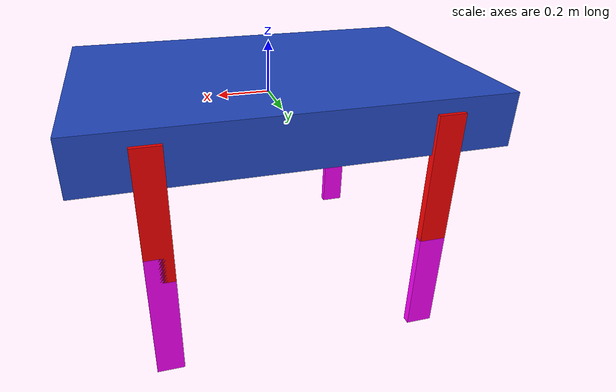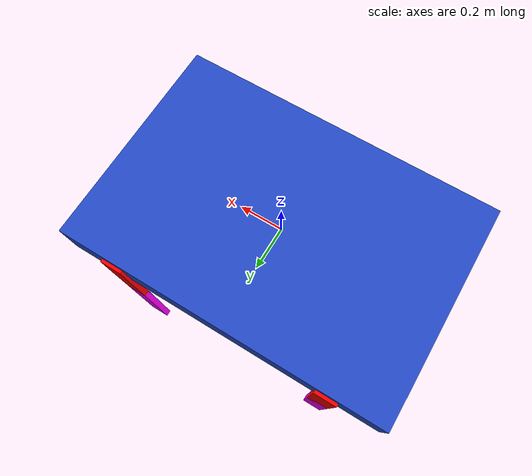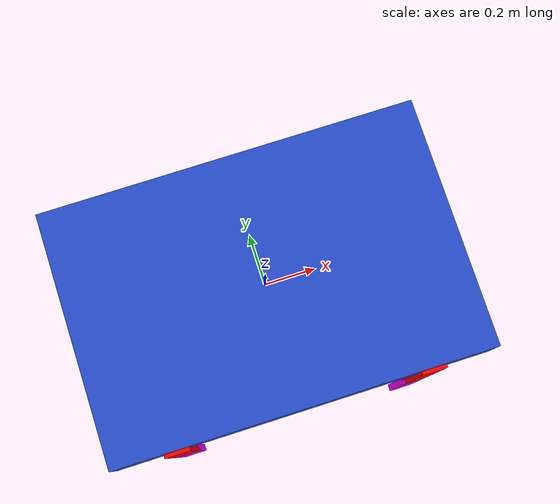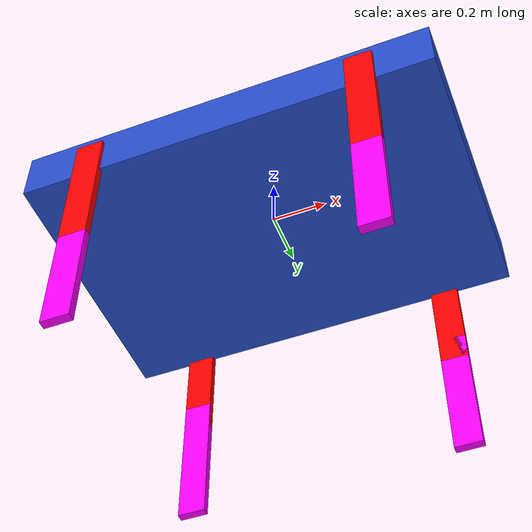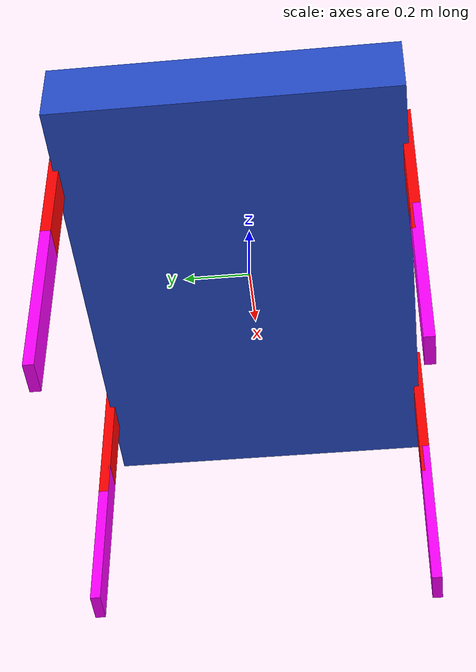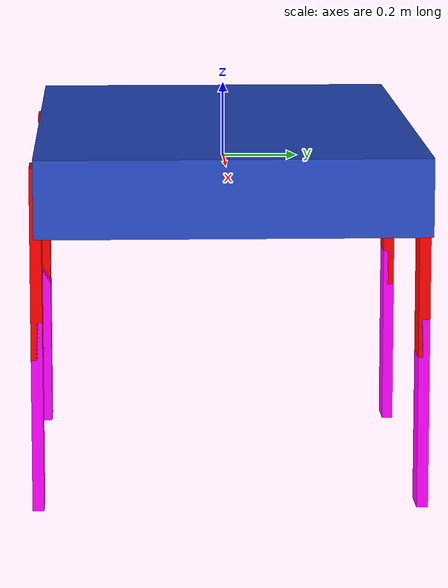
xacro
<?xml version="1.0"?>
<robot xmlns:xacro="http://www.ros.org/wiki/xacro" name="cherry">

<xacro:property name="body_width" value="1.0" />
<xacro:property name="body_len" value="1.5" />
<xacro:property name="body_thickness" value="0.2" />
<xacro:property name="thickness" value="0.03" />
<xacro:property name="leg_len" value="0.5" />
<xacro:property name="hind_len" value="0.5" />
<xacro:property name="limb_width" value="0.1" />
<xacro:property name="joint_vel" value="10" />

<xacro:property name="front_right_limb_x" value="0.5" />
<xacro:property name="front_right_limb_y" value="0.5" />
<xacro:property name="front_right_limb_z" value="-0.2" />

<xacro:property name="front_right_leg_x" value="0" />
<xacro:property name="front_right_leg_y" value="0" />
<xacro:property name="front_right_leg_z" value="-0.4" />
<xacro:property name="front_right_leg_joint_z" value="-0.2" />

<xacro:property name="back_right_limb_x" value="-0.5" />
<xacro:property name="back_right_limb_y" value="0.5" />
<xacro:property name="back_right_limb_z" value="-0.2" />

<xacro:property name="back_right_leg_x" value="0" />
<xacro:property name="back_right_leg_y" value="0" />
<xacro:property name="back_right_leg_z" value="-0.4" />
<xacro:property name="back_right_leg_joint_z" value="-0.2" />

<xacro:property name="front_left_limb_x" value="0.5" />
<xacro:property name="front_left_limb_y" value="-0.5" />
<xacro:property name="front_left_limb_z" value="-0.2" />

<xacro:property name="front_left_leg_x" value="0" />
<xacro:property name="front_left_leg_y" value="0" />
<xacro:property name="front_left_leg_z" value="-0.4" />
<xacro:property name="front_left_leg_joint_z" value="-0.2" />

<xacro:property name="back_left_limb_x" value="-0.5" />
<xacro:property name="back_left_limb_y" value="-0.5" />
<xacro:property name="back_left_limb_z" value="-0.2" />

<xacro:property name="back_left_leg_x" value="0" />
<xacro:property name="back_left_leg_y" value="0" />
<xacro:property name="back_left_leg_z" value="-0.4" />
<xacro:property name="back_left_leg_joint_z" value="-0.2" />

 <link name="base_link">
    <visual>
        <geometry>
           <box size="${body_len} ${body_width} ${body_thickness}"/>
        </geometry>
        <material name="blue"/>
    </visual>
    <collision>
        <geometry>
            <box size="${body_len} ${body_width}  ${body_thickness}"/>
        </geometry>
    </collision>
    <inertial>
        <origin xyz="0.0 0.0 0.0" rpy="0.0 0.0 0.0"/>
        <mass value="0.5"/>
        <geometry>
            <box size="${body_len} ${body_width}  ${body_thickness}"/>
        </geometry>
    </inertial>
    <collision>
        <geometry>
            <box size="${body_len} ${body_width}  ${body_thickness}"/>
        </geometry>
    </collision>
</link>

<!-- front right limb -->
<link name="thigh_FR">
    <inertial>
        <origin xyz="0 0 ${front_right_limb_z}" rpy="${pi/2} 0 0 "/>
        <mass value="0.1"/>
        <geometry>
            <box size="${body_len} ${body_width}  ${body_thickness}"/>
        </geometry>
    </inertial>
    <visual name="">
        <origin xyz="0 0 ${front_right_limb_z}" rpy="${pi/2} 0 0 "/>
        <geometry>
            <box size="${limb_width} ${leg_len} ${thickness} "/>
        </geometry>
        <material name="">
            <color rgba="1.0 0.0 0.0 1.0"/>
            <texture filename=""/>
            <texture filename=""/>
        </material>
    </visual>
    <collision>
        <origin xyz="0.0 0.0 0.0" rpy="0.0 0.0 0.0"/>
        <geometry>
            <box size="${limb_width} ${leg_len} ${thickness} "/>

        </geometry>
    </collision>
</link>

<link name="leg_FR">
    <inertial>
        <origin xyz="0.0 0.0 0.0" rpy="0.0 0.0 0.0"/>
        <mass value="0.0"/>
        <inertia ixx="0.0" ixy="0.0" ixz="0.0" iyy="0.0" iyz="0.0" izz="0.0"/>
    </inertial>
    <visual name="">
        <origin xyz="0 0 ${front_right_leg_joint_z}" rpy="${pi/2} 0 0"/>
        <geometry>
            <box size="${limb_width} ${leg_len} ${thickness} "/>
        </geometry>
        <material name="">
            <color rgba="1.0 0.0 1.0 1.0"/>
            <texture filename=""/>
            <texture filename=""/>
        </material>
    </visual>
    <collision>
        <origin xyz="0.0 0.0 0.0" rpy="0.0 0.0 0.0"/>
        <geometry>
            <box size="${limb_width} ${leg_len} ${thickness} "/>

        </geometry>
    </collision>
</link>

<!-- front right limb -->
<link name="thigh_BR">
    <inertial>
        <origin xyz="0.0 0.0 0.0" rpy="0.0 0.0 0.0"/>
        <mass value="0.0"/>
        <inertia ixx="0.0" ixy="0.0" ixz="0.0" iyy="0.0" iyz="0.0" izz="0.0"/>
    </inertial>
    <visual name="">
        <origin xyz="0 0 ${back_right_limb_z}" rpy="${pi/2} 0 0 "/>
        <geometry>
            <box size="${limb_width} ${leg_len} ${thickness} "/>
        </geometry>
        <material name="">
            <color rgba="1.0 0.0 0.0 1.0"/>
            <texture filename=""/>
            <texture filename=""/>
        </material>
    </visual>
    <collision>
        <origin xyz="0.0 0.0 0.0" rpy="0.0 0.0 0.0"/>
        <geometry>
            <box size="${limb_width} ${leg_len} ${thickness} "/>

        </geometry>
    </collision>
</link>

<link name="leg_BR">
    <inertial>
        <origin xyz="0.0 0.0 0.0" rpy="0.0 0.0 0.0"/>
        <mass value="0.0"/>
        <inertia ixx="0.0" ixy="0.0" ixz="0.0" iyy="0.0" iyz="0.0" izz="0.0"/>
    </inertial>
    <visual name="">
        <origin xyz="0 0 ${back_right_leg_joint_z}" rpy="${pi/2} 0 0"/>
        <geometry>
            <box size="${limb_width} ${leg_len} ${thickness} "/>
        </geometry>
        <material name="">
            <color rgba="1.0 0.0 1.0 1.0"/>
            <texture filename=""/>
            <texture filename=""/>
        </material>
    </visual>
    <collision>
        <origin xyz="0.0 0.0 0.0" rpy="0.0 0.0 0.0"/>
        <geometry>
            <box size="${limb_width} ${leg_len} ${thickness} "/>

        </geometry>
    </collision>
</link>

<!-- front left limb -->
<link name="thigh_FL">
    <inertial>
        <origin xyz="0.0 0.0 0.0" rpy="0.0 0.0 0.0"/>
        <mass value="0.0"/>
        <inertia ixx="0.0" ixy="0.0" ixz="0.0" iyy="0.0" iyz="0.0" izz="0.0"/>
    </inertial>
    <visual name="">
        <origin xyz="0 0 ${front_left_limb_z}" rpy="${pi/2} 0 0 "/>
        <geometry>
            <box size="${limb_width} ${leg_len} ${thickness} "/>
        </geometry>
        <material name="">
            <color rgba="1.0 0.0 0.0 1.0"/>
            <texture filename=""/>
            <texture filename=""/>
        </material>
    </visual>
    <collision>
        <origin xyz="0.0 0.0 0.0" rpy="0.0 0.0 0.0"/>
        <geometry>
            <box size="${limb_width} ${leg_len} ${thickness} "/>

        </geometry>
    </collision>
</link>

<link name="leg_FL">
    <inertial>
        <origin xyz="0.0 0.0 0.0" rpy="0.0 0.0 0.0"/>
        <mass value="0.0"/>
        <inertia ixx="0.0" ixy="0.0" ixz="0.0" iyy="0.0" iyz="0.0" izz="0.0"/>
    </inertial>
    <visual name="">
        <origin xyz="0 0 ${front_left_leg_joint_z}" rpy="${pi/2} 0 0"/>
        <geometry>
            <box size="${limb_width} ${leg_len} ${thickness} "/>
        </geometry>
        <material name="">
            <color rgba="1.0 0.0 1.0 1.0"/>
            <texture filename=""/>
            <texture filename=""/>
        </material>
    </visual>
    <collision>
        <origin xyz="0.0 0.0 0.0" rpy="0.0 0.0 0.0"/>
        <geometry>
            <box size="${limb_width} ${leg_len} ${thickness} "/>

        </geometry>
    </collision>
</link>

<!-- back left limb -->
<link name="thigh_BL">
    <inertial>
        <origin xyz="0.0 0.0 0.0" rpy="0.0 0.0 0.0"/>
        <mass value="0.0"/>
        <inertia ixx="0.0" ixy="0.0" ixz="0.0" iyy="0.0" iyz="0.0" izz="0.0"/>
    </inertial>
    <visual name="">
        <origin xyz="0 0 ${back_left_limb_z}" rpy="${pi/2} 0 0 "/>
        <geometry>
            <box size="${limb_width} ${leg_len} ${thickness} "/>
        </geometry>
        <material name="">
            <color rgba="1.0 0.0 0.0 1.0"/>
            <texture filename=""/>
            <texture filename=""/>
        </material>
    </visual>
    <collision>
        <origin xyz="0.0 0.0 0.0" rpy="0.0 0.0 0.0"/>
        <geometry>
            <box size="${limb_width} ${leg_len} ${thickness} "/>

        </geometry>
    </collision>
</link>

<link name="leg_BL">
    <inertial>
        <origin xyz="0.0 0.0 0.0" rpy="0.0 0.0 0.0"/>
        <mass value="0.0"/>
        <inertia ixx="0.0" ixy="0.0" ixz="0.0" iyy="0.0" iyz="0.0" izz="0.0"/>
    </inertial>
    <visual name="">
        <origin xyz="0 0 ${back_left_leg_joint_z}" rpy="${pi/2} 0 0"/>
        <geometry>
            <box size="${limb_width} ${leg_len} ${thickness} "/>
        </geometry>
        <material name="">
            <color rgba="1.0 0.0 1.0 1.0"/>
            <texture filename=""/>
            <texture filename=""/>
        </material>
    </visual>
    <collision>
        <origin xyz="0.0 0.0 0.0" rpy="0.0 0.0 0.0"/>
        <geometry>
            <box size="${limb_width} ${leg_len} ${thickness} "/>

        </geometry>
    </collision>
</link>

<!-- joints  -->

<!-- front right limb -->
<joint name="thigh_FR_joint" type="revolute">
    <origin xyz="${front_right_limb_x} ${front_right_limb_y} 0" rpy="0 0.0 0.0"/>
    <parent link="base_link"/>
    <child link="thigh_FR"/>
    <axis xyz="0.0 1.0 0.0"/>
    <limit lower="-${pi/2}" upper="${pi/2}" effort="0.1" velocity="${joint_vel}"/>
</joint>

<joint name="leg_FR_joint" type="revolute">
    <origin xyz="${front_right_leg_x} ${front_right_leg_y} ${front_right_leg_z}" rpy="0 0.0 0.0"/>
    <parent link="thigh_FR"/>
    <child link="leg_FR"/>
    <axis xyz="0.0 1.0 0.0"/>
    <limit lower="-${pi/2}" upper="${pi/2}" effort="0.1" velocity="${joint_vel}"/>
</joint>

<!-- back right limb -->
<joint name="thigh_BR_joint" type="revolute">
    <origin xyz="${back_right_limb_x} ${back_right_limb_y} 0" rpy="0 0.0 0.0"/>
    <parent link="base_link"/>
    <child link="thigh_BR"/>
    <axis xyz="0.0 1.0 0.0"/>
    <limit lower="-${pi/2}" upper="${pi/2}" effort="0.1" velocity="${joint_vel}"/>
</joint>

<joint name="leg_BR_joint" type="revolute">
    <origin xyz="${back_right_leg_x} ${back_right_leg_y} ${back_right_leg_z}" rpy="0 0.0 0.0"/>
    <parent link="thigh_BR"/>
    <child link="leg_BR"/>
    <axis xyz="0.0 1.0 0.0"/>
    <limit lower="-${pi/2}" upper="${pi/2}" effort="0.1" velocity="${joint_vel}"/>
</joint>

<!-- front left limb -->
<joint name="thigh_FL_joint" type="revolute">
    <origin xyz="${front_left_limb_x} ${front_left_limb_y} 0" rpy="0 0.0 0.0"/>
    <parent link="base_link"/>
    <child link="thigh_FL"/>
    <axis xyz="0.0 1.0 0.0"/>
    <limit lower="-${pi/2}" upper="${pi/2}" effort="0.1" velocity="${joint_vel}"/>
</joint>

<joint name="leg_FL_joint" type="revolute">
    <origin xyz="${front_left_leg_x} ${front_left_leg_y} ${front_left_leg_z}" rpy="0 0.0 0.0"/>
    <parent link="thigh_FL"/>
    <child link="leg_FL"/>
    <axis xyz="0.0 1.0 0.0"/>
    <limit lower="-${pi/2}" upper="${pi/2}" effort="0.1" velocity="${joint_vel}"/>
</joint>

<!-- back left limb -->
<joint name="thigh_BL_joint" type="revolute">
    <origin xyz="${back_left_limb_x} ${back_left_limb_y} 0" rpy="0 0.0 0.0"/>
    <parent link="base_link"/>
    <child link="thigh_BL"/>
    <axis xyz="0.0 1.0 0.0"/>
    <limit lower="-${pi/2}" upper="${pi/2}" effort="0.1" velocity="${joint_vel}"/>
</joint>

<joint name="leg_BL_joint" type="revolute">
    <origin xyz="${back_left_leg_x} ${back_left_leg_y} ${back_left_leg_z}" rpy="0 0.0 0.0"/>
    <parent link="thigh_BL"/>
    <child link="leg_BL"/>
    <axis xyz="0.0 1.0 0.0"/>
    <limit lower="-${pi/2}" upper="${pi/2}" effort="0.1" velocity="${joint_vel}"/>
</joint>

</robot>
